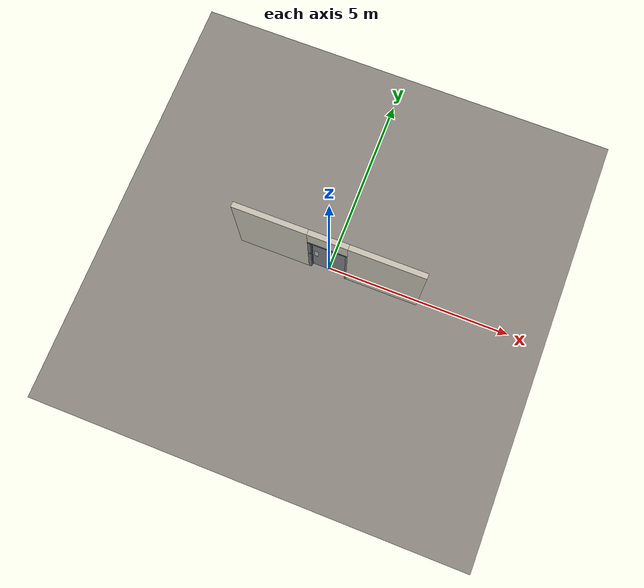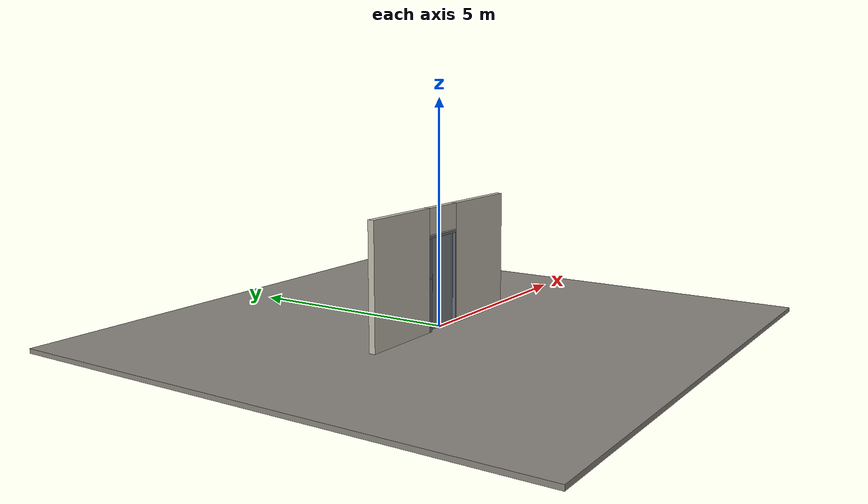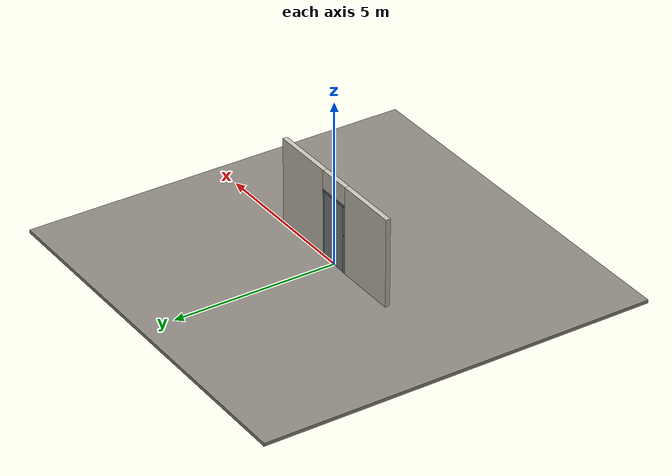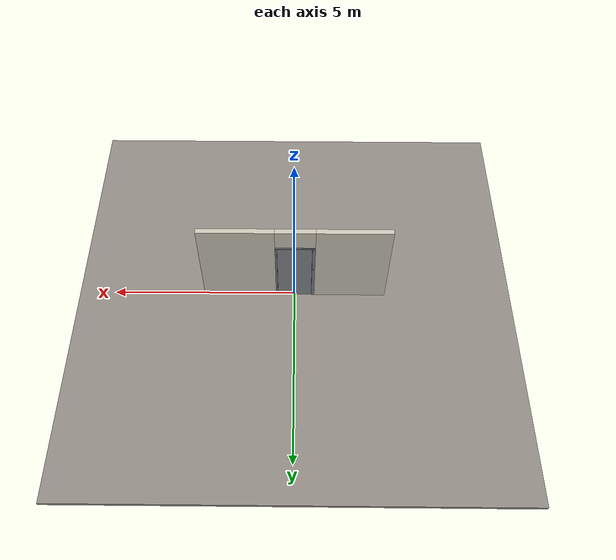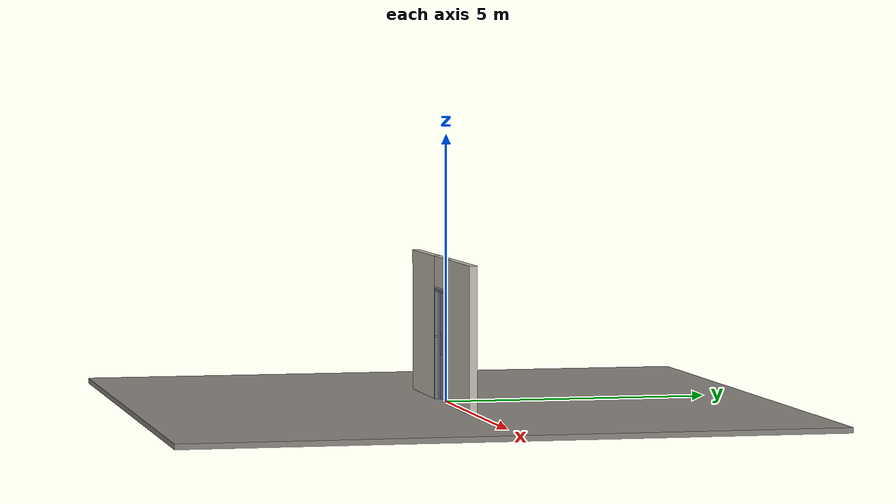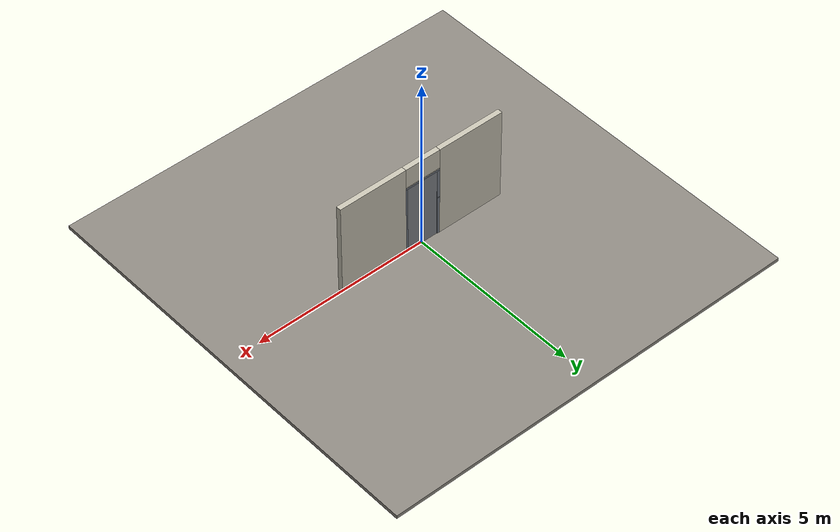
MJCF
<?xml version="1.0" ?>
<mujoco model="db0063_swing_single_minimal">
  <compiler angle="radian" meshdir="../../hardware" texturedir="../../textures" autolimits="true" inertiafromgeom="false"/>
  <option timestep="0.002" integrator="implicitfast" cone="elliptic" impratio="10" noslip_iterations="3">
    <flag multiccd="enable"/>
  </option>
  <size memory="16M"/>
  <default>
    <geom condim="4" solref="0.005 1" solimp="0.95 0.99 0.001"/>
    <joint solreflimit="0.005 1" solimplimit="0.95 0.99 0.001"/>
    <tendon solreflimit="0.005 1"/>
    <equality solref="0.002 1"/>
  </default>
  <visual>
    <headlight ambient="0.4 0.4 0.4" diffuse="0.7 0.7 0.7" specular="0.2 0.2 0.2"/>
    <quality shadowsize="4096"/>
    <map znear="0.01" zfar="60"/>
  </visual>
  <asset>
    <material name="mat_floor" rgba="0.55 0.53 0.5 1" specular="0.2" shininess="0.15" reflectance="0"/>
    <material name="mat_wall" rgba="0.78 0.76 0.7 1" specular="0.2" shininess="0.1" reflectance="0"/>
    <material name="mat_leaf" rgba="0.5 0.51 0.53 1" specular="0.23" shininess="0.4" reflectance="0.02"/>
    <material name="mat_hinge" rgba="0.65 0.66 0.68 1" specular="0.74" shininess="0.5" reflectance="0.36"/>
    <material name="mat_op_stainless" rgba="0.75 0.76 0.77 1" specular="0.8" shininess="0.65" reflectance="0.4"/>
    <material name="mat_deadbolt" rgba="0.85 0.66 0.3 1" specular="0.8" shininess="0.75" reflectance="0.4"/>
    <material name="mat_frame" rgba="0.45 0.48 0.52 1" specular="0.32" shininess="0.6" reflectance="0.08"/>
    <material name="mat_closer" rgba="0.22 0.17 0.13 1" specular="0.8" shininess="0.6" reflectance="0.4"/>
    <material name="mat_bumper_stop" rgba="0.08 0.08 0.08 1" specular="0.2" shininess="0.1" reflectance="0"/>
    <material name="mat_stop_base" rgba="0.9 0.9 0.92 1" specular="0.8" shininess="0.9" reflectance="0.4"/>
    <texture name="skybox" type="skybox" builtin="gradient" rgb1="0.6 0.7 0.85" rgb2="0.9 0.92 0.95" width="256" height="256"/>
  </asset>
  <worldbody>
    <light name="sun" pos="1.5 -2.5 4" dir="-0.3 0.5 -0.8" directional="true" diffuse="0.8 0.8 0.8" specular="0.3 0.3 0.3" castshadow="true"/>
    <light name="fill" pos="-1.5 2.5 3" dir="0.3 -0.5 -0.7" directional="true" diffuse="0.35 0.35 0.4" castshadow="false"/>
    <camera name="robot_view" pos="0 -2.585687 1.734312" xyaxes="1 0 0 0 0.26963 0.962964" fovy="52"/>
    <camera name="far_view" pos="0 2.498687 1.734312" xyaxes="-1 0 0 0 -0.26963 0.962964" fovy="52"/>
    <camera name="iso" pos="-1.932062 -2.178937 2.141063" xyaxes="0.741536 -0.670913 0 0.242917 0.268487 0.932151" fovy="46"/>
    <camera name="detail_handle" pos="-0.1735 -0.8435 1.32" xyaxes="0.97561 0.219512 0 -0.070934 0.315262 0.94635" fovy="38"/>
    <geom name="floor" type="box" size="6 6 0.05" pos="0 0 -0.05" material="mat_floor" group="0" contype="1" conaffinity="1" friction="0.8 0.005 0.0001" density="2400"/>
    <geom name="wall_left" type="box" size="0.97975 0.0725 1.35" pos="-1.52025 -0.0435 1.35" material="mat_wall" group="0" contype="1" conaffinity="1" friction="0.6 0.005 0.0001" density="800"/>
    <geom name="wall_right" type="box" size="0.99475 0.0725 1.35" pos="1.50525 -0.0435 1.35" material="mat_wall" group="0" contype="1" conaffinity="1" friction="0.6 0.005 0.0001" density="800"/>
    <geom name="wall_header" type="box" size="0.5255 0.0725 0.2875" pos="-0.015 -0.0435 2.4125" material="mat_wall" group="0" contype="1" conaffinity="1" friction="0.6 0.005 0.0001" density="800"/>
    <geom name="jamb_hinge" type="box" size="0.025 0.0725 1.0225" pos="0.4855 -0.0435 1.0225" material="mat_frame" group="0" contype="1" conaffinity="1" friction="0.6 0.005 0.0001" density="300"/>
    <geom name="strike_1180_wall_n" type="box" size="0.04 0.05325 0.0155" pos="-0.5005 -0.06275 1.18" material="mat_frame" group="0" contype="1" conaffinity="1" friction="0.6 0.005 0.0001" density="300"/>
    <geom name="strike_1180_wall_p" type="box" size="0.04 0.00975 0.0155" pos="-0.5005 0.01925 1.18" material="mat_frame" group="0" contype="1" conaffinity="1" friction="0.6 0.005 0.0001" density="300"/>
    <geom name="strike_1180_back" type="box" size="0.0253 0.0095 0.0155" pos="-0.5152 0 1.18" material="mat_frame" group="0" contype="1" conaffinity="1" friction="0.6 0.005 0.0001" density="300"/>
    <geom name="jamb_strike_0" type="box" size="0.04 0.0725 0.58225" pos="-0.5005 -0.0435 0.58225" material="mat_frame" group="0" contype="1" conaffinity="1" friction="0.6 0.005 0.0001" density="300"/>
    <geom name="jamb_strike_1" type="box" size="0.04 0.0725 0.42475" pos="-0.5005 -0.0435 1.62025" material="mat_frame" group="0" contype="1" conaffinity="1" friction="0.6 0.005 0.0001" density="300"/>
    <geom name="jamb_head" type="box" size="0.5255 0.0725 0.025" pos="-0.015 -0.0435 2.07" material="mat_frame" group="0" contype="1" conaffinity="1" friction="0.6 0.005 0.0001" density="300"/>
    <geom name="head_stud" type="box" size="0.5255 0.0725 0.015" pos="-0.015 -0.0435 2.11" material="mat_wall" group="0" contype="1" conaffinity="1" friction="0.6 0.005 0.0001" density="500"/>
    <geom name="stop_hinge" type="box" size="0.0055 0.016 1.0225" pos="0.455 -0.0385 1.0225" material="mat_frame" group="0" contype="1" conaffinity="1" friction="0.6 0.005 0.0001" density="300"/>
    <geom name="stop_strike" type="box" size="0.0055 0.016 1.0225" pos="-0.455 -0.0385 1.0225" material="mat_frame" group="0" contype="1" conaffinity="1" friction="0.6 0.005 0.0001" density="300"/>
    <geom name="stop_head" type="box" size="0.4605 0.016 0.0055" pos="0 -0.0385 2.0395" material="mat_frame" group="0" contype="1" conaffinity="1" friction="0.6 0.005 0.0001" density="300"/>
    <site name="approach_point" pos="0 -1.5 0" quat="1 0 0 0" size="0.05" rgba="0.2 0.9 0.2 0.5" group="4"/>
    <site name="goal_point" pos="0 1.5 0" quat="1 0 0 0" size="0.05" rgba="0.2 0.9 0.2 0.5" group="4"/>
    <site name="door_plane_center" pos="0 0 1.0225" quat="1 0 0 0" size="0.02" rgba="0.2 0.9 0.2 0.5" group="4"/>
    <body name="leaf" pos="0.4605 0 0">
      <inertial pos="-0.465025 -0.000325 1.025214" mass="40.250202" quat="0.499525 0.500336 -0.49967 0.500467" diaginertia="2.839419163 13.666290755 16.492333475"/>
      <joint name="leaf_hinge" type="hinge" axis="0 0 -1" pos="-0.003 0.029 0" limited="true" range="0 1.570796" damping="10.25611" frictionloss="0.792352" stiffness="13.057072" springref="-1.488848" armature="0.02"/>
      <geom name="leaf_slab" type="box" size="0.457 0.022 1.016" pos="-0.46 0 1.025" material="mat_leaf" group="0" contype="1" conaffinity="1" friction="0.4 0.005 0.0001" density="1"/>
      <geom name="leaf_push_plate_n" type="box" size="0.05 0.0008 0.2" pos="-0.812 -0.0228 1.04" material="mat_op_stainless" group="1" contype="0" conaffinity="0" density="7900"/>
      <site name="leaf_push_plate_push_n" pos="-0.812 -0.022 1.04" quat="1 0 0 0" size="0.012" rgba="0.2 0.9 0.2 0.5" group="4"/>
      <site name="leaf_edge_mid" pos="-0.917 0 1.016" quat="1 0 0 0" size="0.02" rgba="0.2 0.9 0.2 0.5" group="4"/>
    </body>
  </worldbody>
  <sensor>
    <jointpos name="leaf_hinge_pos" joint="leaf_hinge"/>
    <jointvel name="leaf_hinge_vel" joint="leaf_hinge"/>
  </sensor>
</mujoco>
